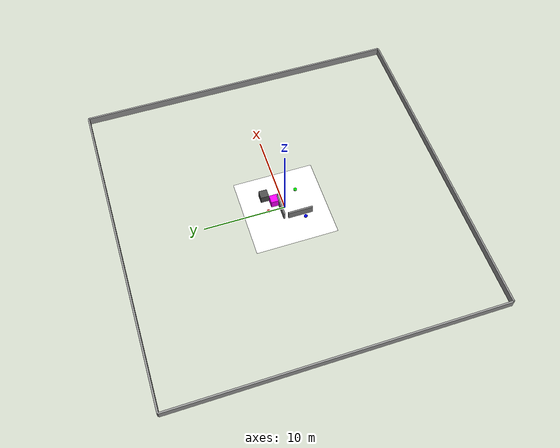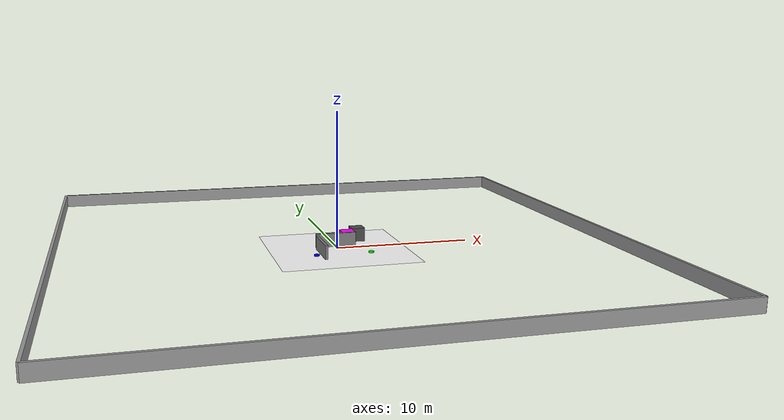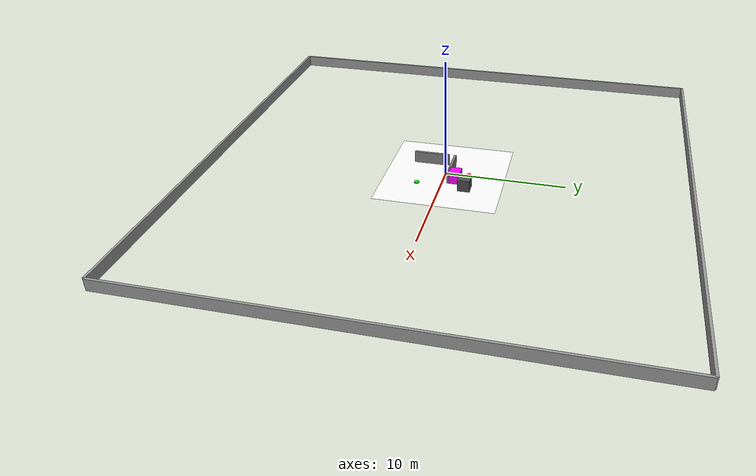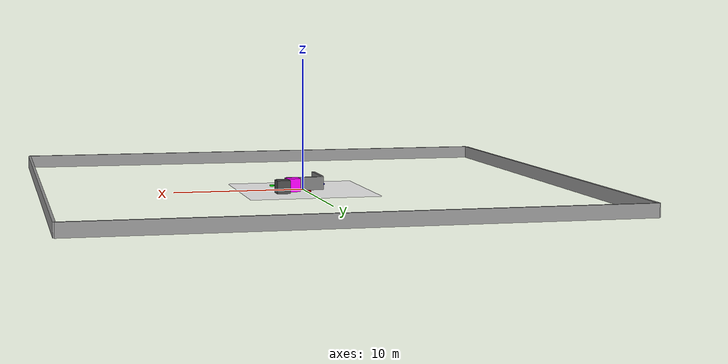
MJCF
<mujoco model="maze">
  <asset>
    <!-- 静态棋盘格 (保留) -->
    <texture name="grid" type="2d" builtin="checker"
            width="512" height="512" rgb1=".2 .3 .4" rgb2=".1 .2 .3"/>
    <material name="floor_grid" texture="grid" texrepeat="20 20"/>

    <!-- ★ 新增：占据图纹理，占位即可，稍后用 Python 覆盖像素 ★ -->
    <texture name="explore_tex" type="2d" builtin="flat"
            width="512" height="512" rgb1="1 1 1" rgb2="1 1 1"/>
    <material name="explore_mat" texture="explore_tex" texrepeat="1 1"/>
  </asset>

  <worldbody>
    <camera name="top" pos="0 0 30" euler="-90 0 0" fovy="60"/>
    <!-- Floor -->
    <geom name="floor"  type="plane"  material="explore_mat" size="5 5 .1" group="1"/>
      <!-- 障碍物：内墙/柱子 -->
    <geom name="block1" type="box"  pos="0 0.5 0.5" size="1.5 0.1 0.5"  rgba="0.5 0.5 0.5 1"/>
    <geom name="block2" type="box"  pos="-1.5 -1.5 0.5" size="0.1 1.5 0.5" rgba="0.5 0.5 0.5 1"/>
    <geom name="block3" type="box" pos="2 2 0.5" size="0.5 0.5 0.5" rgba="0.3 0.3 0.3 1"/>
    <geom name="obstacle1" type="box"  pos="1 1 0.5" size="0.5 0.5 0.5" rgba="1 0 1 1"/>

    <!-- Outer walls -->
    <geom name="wall_n" type="box" pos="0  20 .5" size="20 .1 .5" rgba=".6 .6 .6 1"/>
    <geom name="wall_s" type="box" pos="0 -20 .5" size="20 .1 .5" rgba=".6 .6 .6 1"/>
    <geom name="wall_e" type="box" pos=" 20 0 .5" size=".1 20 .5" rgba=".6 .6 .6 1"/>
    <geom name="wall_w" type="box" pos="-20 0 .5" size=".1 20 .5" rgba=".6 .6 .6 1"/>

    <!-- Three robots -->
    <body name="agent0" pos="-2 -2 .1">
      <geom type="cylinder" size=".2 .05" rgba="0 0 1 1"/>
        <joint name="agent0_x" type="slide" axis="1 0 0"/>
      <joint name="agent0_y" type="slide" axis="0 1 0"/>
      <joint name="agent0_yaw" type="hinge" axis="0 0 1"/>
    </body>

    <body name="agent1" pos="2 -2 .1">
      <geom type="cylinder" size=".2 .05" rgba="0 1 0 1"/>
      <joint name="agent1_x" type="slide" axis="1 0 0"/>
      <joint name="agent1_y" type="slide" axis="0 1 0"/>
      <joint name="agent1_yaw" type="hinge" axis="0 0 1"/>
    </body>

    <body name="agent2" pos="0 2 .1">
      <geom type="cylinder" size=".2 .05" rgba="1 0 0 1"/>
      <joint name="agent2_x" type="slide" axis="1 0 0"/>
      <joint name="agent2_y" type="slide" axis="0 1 0"/>
      <joint name="agent2_yaw" type="hinge" axis="0 0 1"/>
    </body>
  </worldbody>
</mujoco>
